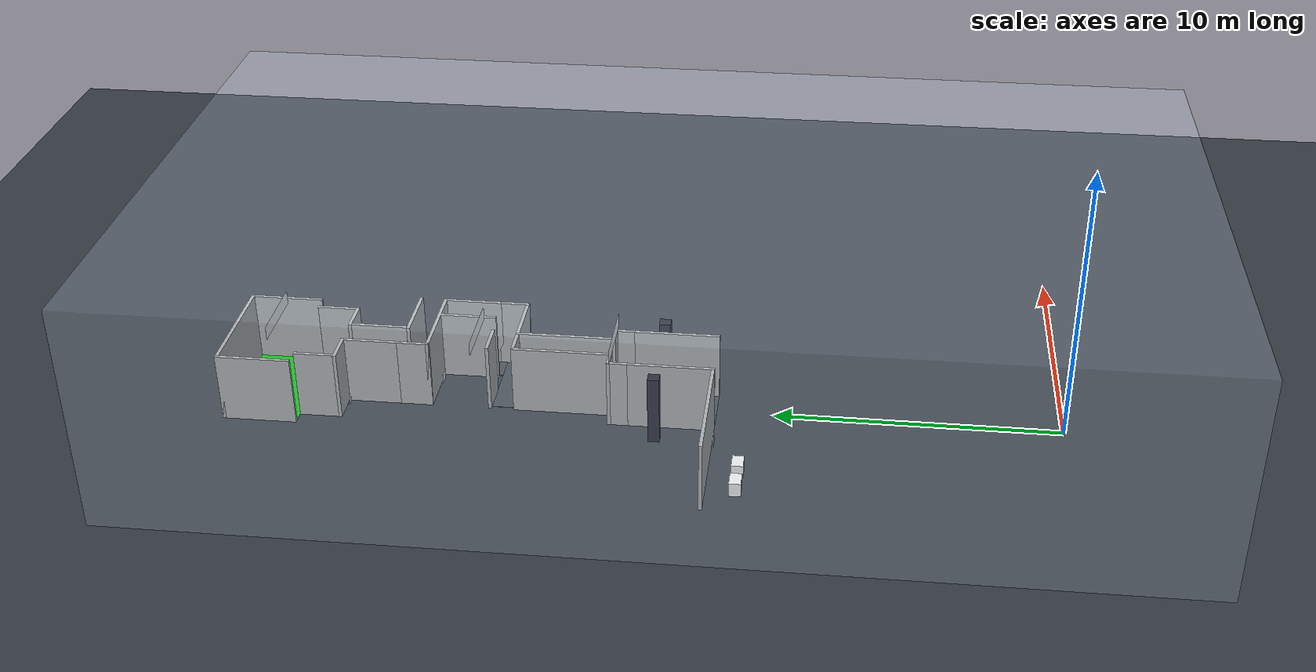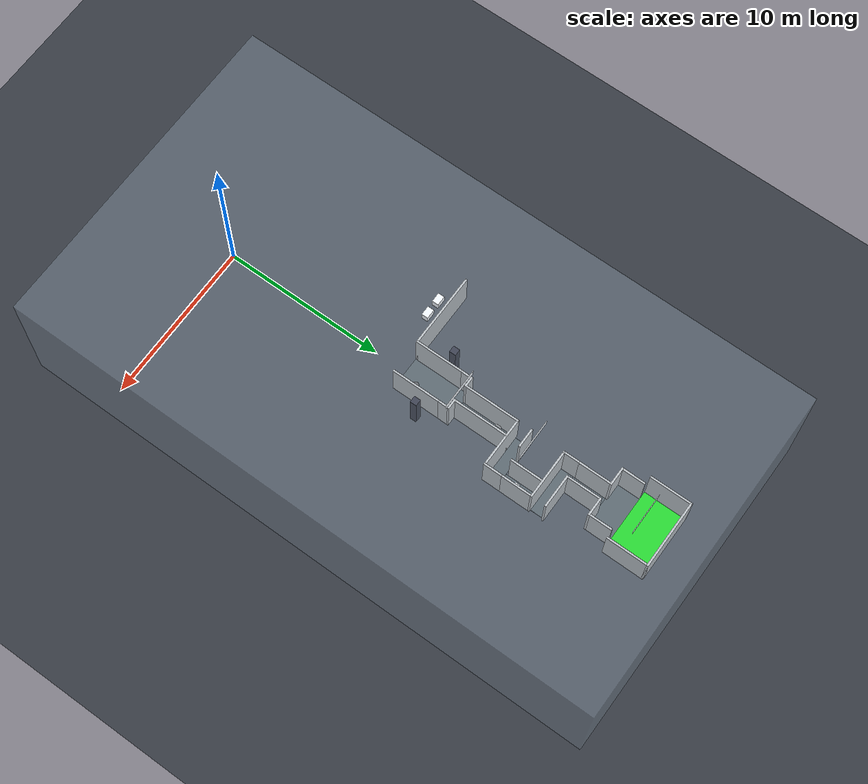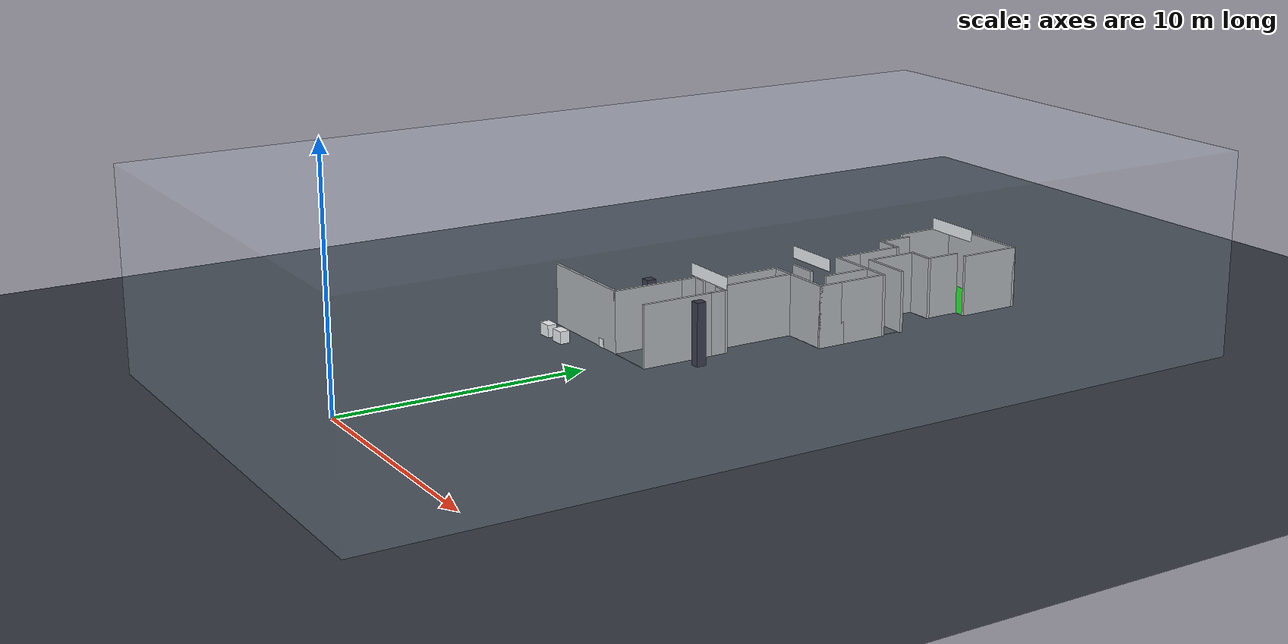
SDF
<sdf version="1.6">
 <world name="mahe_arena">
  <model name="ground_plane">
   <static>true</static>
   <link name="link">
    <collision name="collision">
     <geometry><plane><normal>0 0 1</normal><size>100 100</size></plane></geometry>
    </collision>
    <visual name="visual">
     <geometry><plane><normal>0 0 1</normal><size>100 100</size></plane></geometry>
     <material>
      <ambient>0.15 0.16 0.17 1</ambient>
      <diffuse>0.2 0.22 0.25 1</diffuse>
      <specular>0.4 0.4 0.4 1</specular>
     </material>
    </visual>
   </link>
  </model>
  <model name="glass_house">
   <static>true</static>
   <pose>1.5 13.5 4.0 0 0 0</pose>
   <link name="link">
    <visual name="visual">
     <geometry><box><size>20.0 36.0 8.0</size></box></geometry>
     <material>
      <ambient>0.8 0.9 1.0 0.1</ambient>
      <diffuse>0.8 0.9 1.0 0.1</diffuse>
      <specular>1 1 1 1</specular>
      <transparency>0.8</transparency>
     </material>
    </visual>
   </link>
  </model>
  <model name="wall_17">
   <static>true</static>
   <pose>-3.31 12.06 1.25 0 0 0</pose>
   <link name="link">
    <collision name="col"><geometry><box><size>4.62 0.12 2.5</size></box></geometry></collision>
    <visual name="visual">
     <geometry><box><size>4.62 0.12 2.5</size></box></geometry>
     <material>
      <ambient>0.7 0.7 0.7 1.0</ambient>
      <diffuse>0.7 0.7 0.7 1.0</diffuse>
      <specular>0.1 0.1 0.1 1</specular>
     </material>
    </visual>
   </link>
  </model>
  <model name="wall_21">
   <static>true</static>
   <pose>-1.06 13.5 1.25 0 0 0</pose>
   <link name="link">
    <collision name="col"><geometry><box><size>0.12 3.0 2.5</size></box></geometry></collision>
    <visual name="visual">
     <geometry><box><size>0.12 3.0 2.5</size></box></geometry>
     <material>
      <ambient>0.7 0.7 0.7 1.0</ambient>
      <diffuse>0.7 0.7 0.7 1.0</diffuse>
      <specular>0.1 0.1 0.1 1</specular>
     </material>
    </visual>
   </link>
  </model>
  <model name="wall_22">
   <static>true</static>
   <pose>1.06 13.5 1.25 0 0 0</pose>
   <link name="link">
    <collision name="col"><geometry><box><size>0.12 3.0 2.5</size></box></geometry></collision>
    <visual name="visual">
     <geometry><box><size>0.12 3.0 2.5</size></box></geometry>
     <material>
      <ambient>0.7 0.7 0.7 1.0</ambient>
      <diffuse>0.7 0.7 0.7 1.0</diffuse>
      <specular>0.1 0.1 0.1 1</specular>
     </material>
    </visual>
   </link>
  </model>
  <model name="wall_23">
   <static>true</static>
   <pose>-1.06 15.3 1.25 0 0 0</pose>
   <link name="link">
    <collision name="col"><geometry><box><size>0.12 0.6 2.5</size></box></geometry></collision>
    <visual name="visual">
     <geometry><box><size>0.12 0.6 2.5</size></box></geometry>
     <material>
      <ambient>0.7 0.7 0.7 1.0</ambient>
      <diffuse>0.7 0.7 0.7 1.0</diffuse>
      <specular>0.1 0.1 0.1 1</specular>
     </material>
    </visual>
   </link>
  </model>
  <model name="wall_24">
   <static>true</static>
   <pose>1.06 15.3 1.25 0 0 0</pose>
   <link name="link">
    <collision name="col"><geometry><box><size>0.12 0.6 2.5</size></box></geometry></collision>
    <visual name="visual">
     <geometry><box><size>0.12 0.6 2.5</size></box></geometry>
     <material>
      <ambient>0.7 0.7 0.7 1.0</ambient>
      <diffuse>0.7 0.7 0.7 1.0</diffuse>
      <specular>0.1 0.1 0.1 1</specular>
     </material>
    </visual>
   </link>
  </model>
  <model name="wall_25">
   <static>true</static>
   <pose>-0.7850000000000001 15.66 1.25 0 0 0</pose>
   <link name="link">
    <collision name="col"><geometry><box><size>0.67 0.12 2.5</size></box></geometry></collision>
    <visual name="visual">
     <geometry><box><size>0.67 0.12 2.5</size></box></geometry>
     <material>
      <ambient>0.7 0.7 0.7 1.0</ambient>
      <diffuse>0.7 0.7 0.7 1.0</diffuse>
      <specular>0.1 0.1 0.1 1</specular>
     </material>
    </visual>
   </link>
  </model>
  <model name="wall_26">
   <static>true</static>
   <pose>0.785 15.66 1.25 0 0 0</pose>
   <link name="link">
    <collision name="col"><geometry><box><size>0.67 0.12 2.5</size></box></geometry></collision>
    <visual name="visual">
     <geometry><box><size>0.67 0.12 2.5</size></box></geometry>
     <material>
      <ambient>0.7 0.7 0.7 1.0</ambient>
      <diffuse>0.7 0.7 0.7 1.0</diffuse>
      <specular>0.1 0.1 0.1 1</specular>
     </material>
    </visual>
   </link>
  </model>
  <model name="wall_27">
   <static>true</static>
   <pose>-0.51 17.419999999999998 1.25 0 0 0</pose>
   <link name="link">
    <collision name="col"><geometry><box><size>0.12 3.4 2.5</size></box></geometry></collision>
    <visual name="visual">
     <geometry><box><size>0.12 3.4 2.5</size></box></geometry>
     <material>
      <ambient>0.7 0.7 0.7 1.0</ambient>
      <diffuse>0.7 0.7 0.7 1.0</diffuse>
      <specular>0.1 0.1 0.1 1</specular>
     </material>
    </visual>
   </link>
  </model>
  <model name="wall_28">
   <static>true</static>
   <pose>0.51 17.419999999999998 1.25 0 0 0</pose>
   <link name="link">
    <collision name="col"><geometry><box><size>0.12 3.4 2.5</size></box></geometry></collision>
    <visual name="visual">
     <geometry><box><size>0.12 3.4 2.5</size></box></geometry>
     <material>
      <ambient>0.7 0.7 0.7 1.0</ambient>
      <diffuse>0.7 0.7 0.7 1.0</diffuse>
      <specular>0.1 0.1 0.1 1</specular>
     </material>
    </visual>
   </link>
  </model>
  <model name="wall_29">
   <static>true</static>
   <pose>0.9999999999999998 19.06 1.25 0 0 0</pose>
   <link name="link">
    <collision name="col"><geometry><box><size>3.1399999999999997 0.12 2.5</size></box></geometry></collision>
    <visual name="visual">
     <geometry><box><size>3.1399999999999997 0.12 2.5</size></box></geometry>
     <material>
      <ambient>0.7 0.7 0.7 1.0</ambient>
      <diffuse>0.7 0.7 0.7 1.0</diffuse>
      <specular>0.1 0.1 0.1 1</specular>
     </material>
    </visual>
   </link>
  </model>
  <model name="wall_30">
   <static>true</static>
   <pose>0.040000000000000036 19.959999999999997 1.25 0 0 0</pose>
   <link name="link">
    <collision name="col"><geometry><box><size>1.2200000000000002 0.12 2.5</size></box></geometry></collision>
    <visual name="visual">
     <geometry><box><size>1.2200000000000002 0.12 2.5</size></box></geometry>
     <material>
      <ambient>0.7 0.7 0.7 1.0</ambient>
      <diffuse>0.7 0.7 0.7 1.0</diffuse>
      <specular>0.1 0.1 0.1 1</specular>
     </material>
    </visual>
   </link>
  </model>
  <model name="wall_31">
   <static>true</static>
   <pose>2.5100000000000002 19.57 1.25 0 0 0</pose>
   <link name="link">
    <collision name="col"><geometry><box><size>0.12 1.1400000000000001 2.5</size></box></geometry></collision>
    <visual name="visual">
     <geometry><box><size>0.12 1.1400000000000001 2.5</size></box></geometry>
     <material>
      <ambient>0.7 0.7 0.7 1.0</ambient>
      <diffuse>0.7 0.7 0.7 1.0</diffuse>
      <specular>0.1 0.1 0.1 1</specular>
     </material>
    </visual>
   </link>
  </model>
  <model name="wall_32">
   <static>true</static>
   <pose>1.4900000000000002 21.009999999999998 1.25 0 0 0</pose>
   <link name="link">
    <collision name="col"><geometry><box><size>0.12 1.98 2.5</size></box></geometry></collision>
    <visual name="visual">
     <geometry><box><size>0.12 1.98 2.5</size></box></geometry>
     <material>
      <ambient>0.7 0.7 0.7 1.0</ambient>
      <diffuse>0.7 0.7 0.7 1.0</diffuse>
      <specular>0.1 0.1 0.1 1</specular>
     </material>
    </visual>
   </link>
  </model>
  <model name="wall_33">
   <static>true</static>
   <pose>2.5100000000000002 21.009999999999998 1.25 0 0 0</pose>
   <link name="link">
    <collision name="col"><geometry><box><size>0.12 1.98 2.5</size></box></geometry></collision>
    <visual name="visual">
     <geometry><box><size>0.12 1.98 2.5</size></box></geometry>
     <material>
      <ambient>0.7 0.7 0.7 1.0</ambient>
      <diffuse>0.7 0.7 0.7 1.0</diffuse>
      <specular>0.1 0.1 0.1 1</specular>
     </material>
    </visual>
   </link>
  </model>
  <model name="wall_34">
   <static>true</static>
   <pose>0.9999999999999998 22.06 1.25 0 0 0</pose>
   <link name="link">
    <collision name="col"><geometry><box><size>3.1399999999999997 0.12 2.5</size></box></geometry></collision>
    <visual name="visual">
     <geometry><box><size>3.1399999999999997 0.12 2.5</size></box></geometry>
     <material>
      <ambient>0.7 0.7 0.7 1.0</ambient>
      <diffuse>0.7 0.7 0.7 1.0</diffuse>
      <specular>0.1 0.1 0.1 1</specular>
     </material>
    </visual>
   </link>
  </model>
  <model name="wall_35">
   <static>true</static>
   <pose>1.51 22.959999999999997 1.25 0 0 0</pose>
   <link name="link">
    <collision name="col"><geometry><box><size>2.12 0.12 2.5</size></box></geometry></collision>
    <visual name="visual">
     <geometry><box><size>2.12 0.12 2.5</size></box></geometry>
     <material>
      <ambient>0.7 0.7 0.7 1.0</ambient>
      <diffuse>0.7 0.7 0.7 1.0</diffuse>
      <specular>0.1 0.1 0.1 1</specular>
     </material>
    </visual>
   </link>
  </model>
  <model name="wall_36">
   <static>true</static>
   <pose>-0.51 22.57 1.25 0 0 0</pose>
   <link name="link">
    <collision name="col"><geometry><box><size>0.12 1.1400000000000001 2.5</size></box></geometry></collision>
    <visual name="visual">
     <geometry><box><size>0.12 1.1400000000000001 2.5</size></box></geometry>
     <material>
      <ambient>0.7 0.7 0.7 1.0</ambient>
      <diffuse>0.7 0.7 0.7 1.0</diffuse>
      <specular>0.1 0.1 0.1 1</specular>
     </material>
    </visual>
   </link>
  </model>
  <model name="wall_37">
   <static>true</static>
   <pose>-0.51 24.009999999999998 1.25 0 0 0</pose>
   <link name="link">
    <collision name="col"><geometry><box><size>0.12 1.98 2.5</size></box></geometry></collision>
    <visual name="visual">
     <geometry><box><size>0.12 1.98 2.5</size></box></geometry>
     <material>
      <ambient>0.7 0.7 0.7 1.0</ambient>
      <diffuse>0.7 0.7 0.7 1.0</diffuse>
      <specular>0.1 0.1 0.1 1</specular>
     </material>
    </visual>
   </link>
  </model>
  <model name="wall_38">
   <static>true</static>
   <pose>0.51 24.009999999999998 1.25 0 0 0</pose>
   <link name="link">
    <collision name="col"><geometry><box><size>0.12 1.98 2.5</size></box></geometry></collision>
    <visual name="visual">
     <geometry><box><size>0.12 1.98 2.5</size></box></geometry>
     <material>
      <ambient>0.7 0.7 0.7 1.0</ambient>
      <diffuse>0.7 0.7 0.7 1.0</diffuse>
      <specular>0.1 0.1 0.1 1</specular>
     </material>
    </visual>
   </link>
  </model>
  <model name="wall_39">
   <static>true</static>
   <pose>-1.0350000000000001 25.06 1.25 0 0 0</pose>
   <link name="link">
    <collision name="col"><geometry><box><size>1.17 0.12 2.5</size></box></geometry></collision>
    <visual name="visual">
     <geometry><box><size>1.17 0.12 2.5</size></box></geometry>
     <material>
      <ambient>0.7 0.7 0.7 1.0</ambient>
      <diffuse>0.7 0.7 0.7 1.0</diffuse>
      <specular>0.1 0.1 0.1 1</specular>
     </material>
    </visual>
   </link>
  </model>
  <model name="wall_40">
   <static>true</static>
   <pose>1.035 25.06 1.25 0 0 0</pose>
   <link name="link">
    <collision name="col"><geometry><box><size>1.17 0.12 2.5</size></box></geometry></collision>
    <visual name="visual">
     <geometry><box><size>1.17 0.12 2.5</size></box></geometry>
     <material>
      <ambient>0.7 0.7 0.7 1.0</ambient>
      <diffuse>0.7 0.7 0.7 1.0</diffuse>
      <specular>0.1 0.1 0.1 1</specular>
     </material>
    </visual>
   </link>
  </model>
  <model name="wall_41">
   <static>true</static>
   <pose>-1.56 25.810000000000002 1.25 0 0 0</pose>
   <link name="link">
    <collision name="col"><geometry><box><size>0.12 1.38 2.5</size></box></geometry></collision>
    <visual name="visual">
     <geometry><box><size>0.12 1.38 2.5</size></box></geometry>
     <material>
      <ambient>0.7 0.7 0.7 1.0</ambient>
      <diffuse>0.7 0.7 0.7 1.0</diffuse>
      <specular>0.1 0.1 0.1 1</specular>
     </material>
    </visual>
   </link>
  </model>
  <model name="wall_42">
   <static>true</static>
   <pose>1.56 25.810000000000002 1.25 0 0 0</pose>
   <link name="link">
    <collision name="col"><geometry><box><size>0.12 1.38 2.5</size></box></geometry></collision>
    <visual name="visual">
     <geometry><box><size>0.12 1.38 2.5</size></box></geometry>
     <material>
      <ambient>0.7 0.7 0.7 1.0</ambient>
      <diffuse>0.7 0.7 0.7 1.0</diffuse>
      <specular>0.1 0.1 0.1 1</specular>
     </material>
    </visual>
   </link>
  </model>
  <model name="wall_43">
   <static>true</static>
   <pose>-2.06 27.81 1.25 0 0 0</pose>
   <link name="link">
    <collision name="col"><geometry><box><size>0.12 2.62 2.5</size></box></geometry></collision>
    <visual name="visual">
     <geometry><box><size>0.12 2.62 2.5</size></box></geometry>
     <material>
      <ambient>0.7 0.7 0.7 1.0</ambient>
      <diffuse>0.7 0.7 0.7 1.0</diffuse>
      <specular>0.1 0.1 0.1 1</specular>
     </material>
    </visual>
   </link>
  </model>
  <model name="wall_44">
   <static>true</static>
   <pose>2.06 27.81 1.25 0 0 0</pose>
   <link name="link">
    <collision name="col"><geometry><box><size>0.12 2.62 2.5</size></box></geometry></collision>
    <visual name="visual">
     <geometry><box><size>0.12 2.62 2.5</size></box></geometry>
     <material>
      <ambient>0.7 0.7 0.7 1.0</ambient>
      <diffuse>0.7 0.7 0.7 1.0</diffuse>
      <specular>0.1 0.1 0.1 1</specular>
     </material>
    </visual>
   </link>
  </model>
  <model name="wall_45">
   <static>true</static>
   <pose>0.0 29.06 1.25 0 0 0</pose>
   <link name="link">
    <collision name="col"><geometry><box><size>4.24 0.12 2.5</size></box></geometry></collision>
    <visual name="visual">
     <geometry><box><size>4.24 0.12 2.5</size></box></geometry>
     <material>
      <ambient>0.7 0.7 0.7 1.0</ambient>
      <diffuse>0.7 0.7 0.7 1.0</diffuse>
      <specular>0.1 0.1 0.1 1</specular>
     </material>
    </visual>
   </link>
  </model>
  <model name="floor_8">
   <static>true</static>
   <pose>0.0 13.5 0.005 0 0 0</pose>
   <link name="link">
    <collision name="col"><geometry><box><size>2.0 3.0 0.01</size></box></geometry></collision>
    <visual name="visual">
     <geometry><box><size>2.0 3.0 0.01</size></box></geometry>
     <material>
      <ambient>0.25 0.28 0.30 1.0</ambient>
      <diffuse>0.25 0.28 0.30 1.0</diffuse>
      <specular>0.1 0.1 0.1 1</specular>
     </material>
    </visual>
   </link>
  </model>
  <model name="floor_9">
   <static>true</static>
   <pose>0.0 15.3 0.005 0 0 0</pose>
   <link name="link">
    <collision name="col"><geometry><box><size>2.0 0.6 0.01</size></box></geometry></collision>
    <visual name="visual">
     <geometry><box><size>2.0 0.6 0.01</size></box></geometry>
     <material>
      <ambient>0.25 0.28 0.30 1.0</ambient>
      <diffuse>0.25 0.28 0.30 1.0</diffuse>
      <specular>0.1 0.1 0.1 1</specular>
     </material>
    </visual>
   </link>
  </model>
  <model name="floor_10">
   <static>true</static>
   <pose>0.0 16.05 0.005 0 0 0</pose>
   <link name="link">
    <collision name="col"><geometry><box><size>0.9 0.9 0.01</size></box></geometry></collision>
    <visual name="visual">
     <geometry><box><size>0.9 0.9 0.01</size></box></geometry>
     <material>
      <ambient>0.25 0.28 0.30 1.0</ambient>
      <diffuse>0.25 0.28 0.30 1.0</diffuse>
      <specular>0.1 0.1 0.1 1</specular>
     </material>
    </visual>
   </link>
  </model>
  <model name="floor_11">
   <static>true</static>
   <pose>0.0 17.75 0.005 0 0 0</pose>
   <link name="link">
    <collision name="col"><geometry><box><size>0.9 2.5 0.01</size></box></geometry></collision>
    <visual name="visual">
     <geometry><box><size>0.9 2.5 0.01</size></box></geometry>
     <material>
      <ambient>0.25 0.28 0.30 1.0</ambient>
      <diffuse>0.25 0.28 0.30 1.0</diffuse>
      <specular>0.1 0.1 0.1 1</specular>
     </material>
    </visual>
   </link>
  </model>
  <model name="floor_12">
   <static>true</static>
   <pose>1.0 19.45 0.005 0 0 0</pose>
   <link name="link">
    <collision name="col"><geometry><box><size>2.9 0.9 0.01</size></box></geometry></collision>
    <visual name="visual">
     <geometry><box><size>2.9 0.9 0.01</size></box></geometry>
     <material>
      <ambient>0.25 0.28 0.30 1.0</ambient>
      <diffuse>0.25 0.28 0.30 1.0</diffuse>
      <specular>0.1 0.1 0.1 1</specular>
     </material>
    </visual>
   </link>
  </model>
  <model name="floor_13">
   <static>true</static>
   <pose>2.0 20.95 0.005 0 0 0</pose>
   <link name="link">
    <collision name="col"><geometry><box><size>0.9 2.1 0.01</size></box></geometry></collision>
    <visual name="visual">
     <geometry><box><size>0.9 2.1 0.01</size></box></geometry>
     <material>
      <ambient>0.25 0.28 0.30 1.0</ambient>
      <diffuse>0.25 0.28 0.30 1.0</diffuse>
      <specular>0.1 0.1 0.1 1</specular>
     </material>
    </visual>
   </link>
  </model>
  <model name="floor_14">
   <static>true</static>
   <pose>1.0 22.45 0.005 0 0 0</pose>
   <link name="link">
    <collision name="col"><geometry><box><size>2.9 0.9 0.01</size></box></geometry></collision>
    <visual name="visual">
     <geometry><box><size>2.9 0.9 0.01</size></box></geometry>
     <material>
      <ambient>0.25 0.28 0.30 1.0</ambient>
      <diffuse>0.25 0.28 0.30 1.0</diffuse>
      <specular>0.1 0.1 0.1 1</specular>
     </material>
    </visual>
   </link>
  </model>
  <model name="floor_15">
   <static>true</static>
   <pose>0.0 23.95 0.005 0 0 0</pose>
   <link name="link">
    <collision name="col"><geometry><box><size>0.9 2.1 0.01</size></box></geometry></collision>
    <visual name="visual">
     <geometry><box><size>0.9 2.1 0.01</size></box></geometry>
     <material>
      <ambient>0.25 0.28 0.30 1.0</ambient>
      <diffuse>0.25 0.28 0.30 1.0</diffuse>
      <specular>0.1 0.1 0.1 1</specular>
     </material>
    </visual>
   </link>
  </model>
  <model name="floor_16">
   <static>true</static>
   <pose>0.0 25.75 0.005 0 0 0</pose>
   <link name="link">
    <collision name="col"><geometry><box><size>3.0 1.5 0.01</size></box></geometry></collision>
    <visual name="visual">
     <geometry><box><size>3.0 1.5 0.01</size></box></geometry>
     <material>
      <ambient>0.25 0.28 0.30 1.0</ambient>
      <diffuse>0.25 0.28 0.30 1.0</diffuse>
      <specular>0.1 0.1 0.1 1</specular>
     </material>
    </visual>
   </link>
  </model>
  <model name="floor_17">
   <static>true</static>
   <pose>0.0 27.75 0.005 0 0 0</pose>
   <link name="link">
    <collision name="col"><geometry><box><size>4.0 2.5 0.01</size></box></geometry></collision>
    <visual name="visual">
     <geometry><box><size>4.0 2.5 0.01</size></box></geometry>
     <material>
      <ambient>0.0 0.8 0.0 1.0</ambient>
      <diffuse>0.0 0.8 0.0 1.0</diffuse>
      <specular>0.1 0.1 0.1 1</specular>
     </material>
    </visual>
   </link>
  </model>
  <model name="pillar_4">
   <static>true</static>
   <pose>-1.8 14.0 1.25 0 0 0</pose>
   <link name="link">
    <collision name="col"><geometry><box><size>0.4 0.4 2.5</size></box></geometry></collision>
    <visual name="visual">
     <geometry><box><size>0.4 0.4 2.5</size></box></geometry>
     <material>
      <ambient>0.1 0.1 0.15 1.0</ambient>
      <diffuse>0.1 0.1 0.15 1.0</diffuse>
      <specular>0.1 0.1 0.1 1</specular>
     </material>
    </visual>
   </link>
  </model>
  <model name="pillar_5">
   <static>true</static>
   <pose>1.8 14.0 1.25 0 0 0</pose>
   <link name="link">
    <collision name="col"><geometry><box><size>0.4 0.4 2.5</size></box></geometry></collision>
    <visual name="visual">
     <geometry><box><size>0.4 0.4 2.5</size></box></geometry>
     <material>
      <ambient>0.1 0.1 0.15 1.0</ambient>
      <diffuse>0.1 0.1 0.15 1.0</diffuse>
      <specular>0.1 0.1 0.1 1</specular>
     </material>
    </visual>
   </link>
  </model>
  <model name="obs_box_10">
   <static>true</static>
   <pose>-3.5 11.0 0.25 0 0 0</pose>
   <link name="link">
    <collision name="col"><geometry><box><size>0.6 0.4 0.5</size></box></geometry></collision>
    <visual name="visual">
     <geometry><box><size>0.6 0.4 0.5</size></box></geometry>
     <material>
      <diffuse>1 1 1 1</diffuse>
      <ambient>1 1 1 1</ambient>
      <pbr>
       <metal>
        <albedo_map>../meshes/textures/crate.png</albedo_map>
        <roughness>1.0</roughness>
        <metalness>0.0</metalness>
       </metal>
      </pbr>
     </material>
    </visual>
   </link>
  </model>
  <model name="obs_box_11">
   <static>true</static>
   <pose>-4.5 11.0 0.25 0 0 0</pose>
   <link name="link">
    <collision name="col"><geometry><box><size>0.6 0.4 0.5</size></box></geometry></collision>
    <visual name="visual">
     <geometry><box><size>0.6 0.4 0.5</size></box></geometry>
     <material>
      <diffuse>1 1 1 1</diffuse>
      <ambient>1 1 1 1</ambient>
      <pbr>
       <metal>
        <albedo_map>../meshes/textures/crate.png</albedo_map>
        <roughness>1.0</roughness>
        <metalness>0.0</metalness>
       </metal>
      </pbr>
     </material>
    </visual>
   </link>
  </model>
  <model name="obs_box_12">
   <static>true</static>
   <pose>0.0 17.5 0.25 0 0 0</pose>
   <link name="link">
    <collision name="col"><geometry><box><size>0.25 0.25 0.5</size></box></geometry></collision>
    <visual name="visual">
     <geometry><box><size>0.25 0.25 0.5</size></box></geometry>
     <material>
      <diffuse>1 1 1 1</diffuse>
      <ambient>1 1 1 1</ambient>
      <pbr>
       <metal>
        <albedo_map>../meshes/textures/crate.png</albedo_map>
        <roughness>1.0</roughness>
        <metalness>0.0</metalness>
       </metal>
      </pbr>
     </material>
    </visual>
   </link>
  </model>
  <model name="obs_box_13">
   <static>true</static>
   <pose>1.9 20.8 0.25 0 0 0</pose>
   <link name="link">
    <collision name="col"><geometry><box><size>0.25 0.25 0.5</size></box></geometry></collision>
    <visual name="visual">
     <geometry><box><size>0.25 0.25 0.5</size></box></geometry>
     <material>
      <diffuse>1 1 1 1</diffuse>
      <ambient>1 1 1 1</ambient>
      <pbr>
       <metal>
        <albedo_map>../meshes/textures/crate.png</albedo_map>
        <roughness>1.0</roughness>
        <metalness>0.0</metalness>
       </metal>
      </pbr>
     </material>
    </visual>
   </link>
  </model>
  <model name="obs_cyl_2">
   <static>true</static>
   <pose>0.4 13.0 0.25 0 0 0</pose>
   <link name="link">
    <collision name="collision">
     <geometry><cylinder><radius>0.175</radius><length>0.5</length></cylinder></geometry>
    </collision>
    <visual name="visual">
     <geometry><cylinder><radius>0.175</radius><length>0.5</length></cylinder></geometry>
     <material><ambient>0.3 0.3 0.3 1</ambient><diffuse>0.3 0.3 0.3 1</diffuse></material>
    </visual>
   </link>
  </model>
  <model name="aruco_1">
   <static>true</static>
   <pose>0.93 13.5 0.2 0 0 1.5708</pose>
   <link name="link">
    <collision name="col"><geometry><box><size>0.2 0.01 0.2</size></box></geometry></collision>
    <visual name="visual">
     <geometry><box><size>0.2 0.01 0.2</size></box></geometry>
     <material>
      <diffuse>1 1 1 1</diffuse>
      <ambient>1 1 1 1</ambient>
      <pbr>
       <metal>
        <albedo_map>../meshes/textures/aruco_id1.png</albedo_map>
        <roughness>1.0</roughness>
        <metalness>0.0</metalness>
       </metal>
      </pbr>
     </material>
    </visual>
   </link>
  </model>
  <model name="aruco_2">
   <static>true</static>
   <pose>0.7 15.48 0.2 0 0 3.14159</pose>
   <link name="link">
    <collision name="col"><geometry><box><size>0.2 0.01 0.2</size></box></geometry></collision>
    <visual name="visual">
     <geometry><box><size>0.2 0.01 0.2</size></box></geometry>
     <material>
      <diffuse>1 1 1 1</diffuse>
      <ambient>1 1 1 1</ambient>
      <pbr>
       <metal>
        <albedo_map>../meshes/textures/aruco_id2.png</albedo_map>
        <roughness>1.0</roughness>
        <metalness>0.0</metalness>
       </metal>
      </pbr>
     </material>
    </visual>
   </link>
  </model>
  <model name="aruco_3">
   <static>true</static>
   <pose>-0.9 24.88 0.2 0 0 3.14159</pose>
   <link name="link">
    <collision name="col"><geometry><box><size>0.2 0.01 0.2</size></box></geometry></collision>
    <visual name="visual">
     <geometry><box><size>0.2 0.01 0.2</size></box></geometry>
     <material>
      <diffuse>1 1 1 1</diffuse>
      <ambient>1 1 1 1</ambient>
      <pbr>
       <metal>
        <albedo_map>../meshes/textures/aruco_id3.png</albedo_map>
        <roughness>1.0</roughness>
        <metalness>0.0</metalness>
       </metal>
      </pbr>
     </material>
    </visual>
   </link>
  </model>
  <model name="sign_2">
   <static>true</static>
   <pose>-2.0 11.94 0.2 0 0 3.14159</pose>
   <link name="link">
    <collision name="col"><geometry><box><size>0.35 0.01 0.35</size></box></geometry></collision>
    <visual name="visual">
     <geometry><box><size>0.35 0.01 0.35</size></box></geometry>
     <material>
      <diffuse>1 1 1 1</diffuse>
      <ambient>1 1 1 1</ambient>
      <pbr>
       <metal>
        <albedo_map>../meshes/textures/FORWARD.png</albedo_map>
        <roughness>1.0</roughness>
        <metalness>0.0</metalness>
       </metal>
      </pbr>
     </material>
    </visual>
   </link>
  </model>
  <model name="sign_4">
   <static>true</static>
   <pose>-0.39 18.0 0.2 0 0 -1.5708</pose>
   <link name="link">
    <collision name="col"><geometry><box><size>0.35 0.01 0.35</size></box></geometry></collision>
    <visual name="visual">
     <geometry><box><size>0.35 0.01 0.35</size></box></geometry>
     <material>
      <diffuse>1 1 1 1</diffuse>
      <ambient>1 1 1 1</ambient>
      <pbr>
       <metal>
        <albedo_map>../meshes/textures/INPLACE_ROTATION.png</albedo_map>
        <roughness>1.0</roughness>
        <metalness>0.0</metalness>
       </metal>
      </pbr>
     </material>
    </visual>
   </link>
  </model>
  <model name="sign_5">
   <static>true</static>
   <pose>1.0 21.94 0.2 0 0 3.14159</pose>
   <link name="link">
    <collision name="col"><geometry><box><size>0.35 0.01 0.35</size></box></geometry></collision>
    <visual name="visual">
     <geometry><box><size>0.35 0.01 0.35</size></box></geometry>
     <material>
      <diffuse>1 1 1 1</diffuse>
      <ambient>1 1 1 1</ambient>
      <pbr>
       <metal>
        <albedo_map>../meshes/textures/STOP.png</albedo_map>
        <roughness>1.0</roughness>
        <metalness>0.0</metalness>
       </metal>
      </pbr>
     </material>
    </visual>
   </link>
  </model>
  <model name="sign_6">
   <static>true</static>
   <pose>0.0 28.94 0.2 0 0 3.14159</pose>
   <link name="link">
    <collision name="col"><geometry><box><size>0.35 0.01 0.35</size></box></geometry></collision>
    <visual name="visual">
     <geometry><box><size>0.35 0.01 0.35</size></box></geometry>
     <material>
      <diffuse>1 1 1 1</diffuse>
      <ambient>1 1 1 1</ambient>
      <pbr>
       <metal>
        <albedo_map>../meshes/textures/GOAL.png</albedo_map>
        <roughness>1.0</roughness>
        <metalness>0.0</metalness>
       </metal>
      </pbr>
     </material>
    </visual>
   </link>
  </model>
  <model name="text_maze">
   <static>true</static>
   <pose>0.0 15.6 2.8 0 0 0</pose>
   <link name="link">
    <visual name="visual">
     <geometry><box><size>2.5 0.001 0.5</size></box></geometry>
     <material>
      <diffuse>1 1 1 1</diffuse>
      <ambient>1 1 1 1</ambient>
      <pbr>
       <metal>
        <albedo_map>../meshes/textures/tag_maze.png</albedo_map>
        <roughness>1.0</roughness>
        <metalness>0.0</metalness>
       </metal>
      </pbr>
     </material>
    </visual>
   </link>
  </model>
  <model name="text_goal">
   <static>true</static>
   <pose>0.0 27.5 3.0 0 0 0</pose>
   <link name="link">
    <visual name="visual">
     <geometry><box><size>2.5 0.001 0.5</size></box></geometry>
     <material>
      <diffuse>1 1 1 1</diffuse>
      <ambient>1 1 1 1</ambient>
      <pbr>
       <metal>
        <albedo_map>../meshes/textures/tag_goal.png</albedo_map>
        <roughness>1.0</roughness>
        <metalness>0.0</metalness>
       </metal>
      </pbr>
     </material>
    </visual>
   </link>
  </model>
  <model name="text_deadend">
   <static>true</static>
   <pose>0.0 20.4 2.8 0 0 0</pose>
   <link name="link">
    <visual name="visual">
     <geometry><box><size>2.5 0.001 0.5</size></box></geometry>
     <material>
      <diffuse>1 1 1 1</diffuse>
      <ambient>1 1 1 1</ambient>
      <pbr>
       <metal>
        <albedo_map>../meshes/textures/tag_deadend.png</albedo_map>
        <roughness>1.0</roughness>
        <metalness>0.0</metalness>
       </metal>
      </pbr>
     </material>
    </visual>
   </link>
  </model>
 </world>
</sdf>
